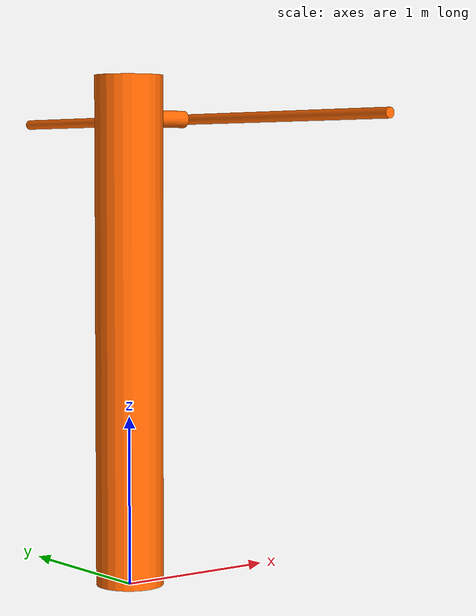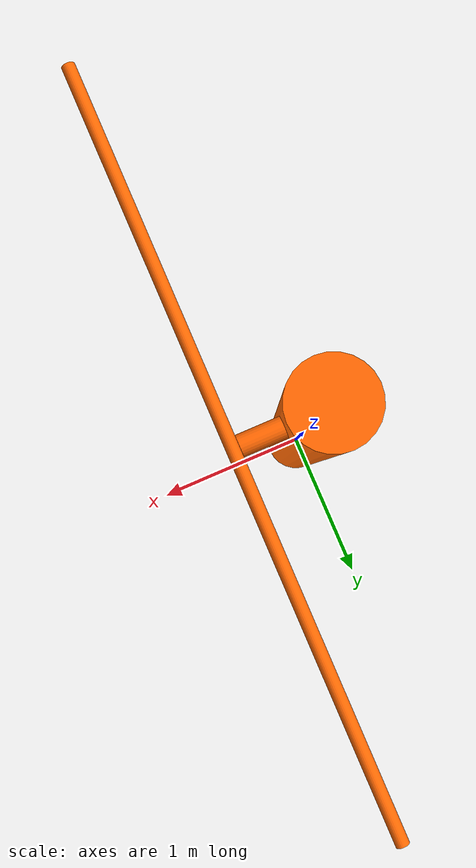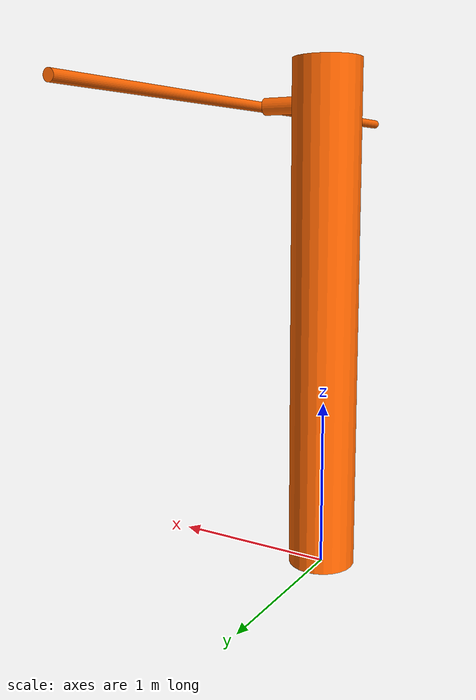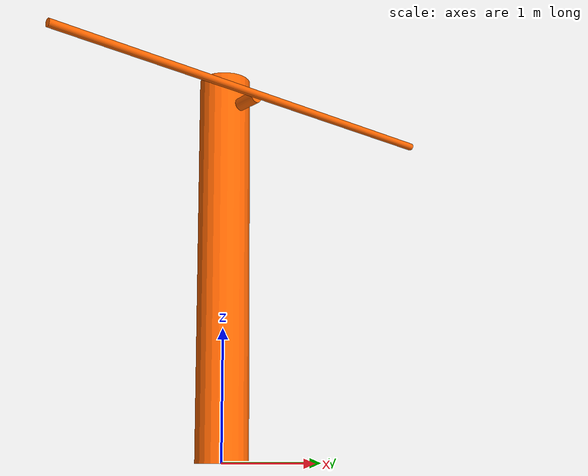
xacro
<robot name="mbot">
    <link name="base_link">
        <visual>
            <origin xyz="0 0 1.5" rpy="0 0 0"/>
            <geometry>
                <cylinder length="3.0" radius="0.2"/>
            </geometry>
            <material name="blue">
                <color rgba="1 0.4 0 1"/>
            </material>
        </visual>
        <collision>
            <origin xyz="0 0 1.5" rpy="0 0 0"/>
            <geometry>
                <cylinder length="3.0" radius="0.2"/>
            </geometry>
        </collision>
        <inertial>
            <origin xyz="0 0 1.5"/>
            <mass value="10"/>
            <inertia ixx="7.6" ixy="0.0" ixz="0.0" iyy="7.6" iyz="0.0" izz="0.2"/>
        </inertial>
    </link>

    <joint name="link1_joint" type="fixed">
        <origin xyz="0.3 0 2.75" rpy="0 0 0"/>
        <parent link="base_link"/>
        <child link="link1"/>
        <axis xyz="1 0 0"/>
    </joint>
    <link name="link1">
        <visual>
            <origin xyz="0 0 0" rpy="1.570795 0 1.570795"/>
            <geometry>
                <cylinder length="0.2" radius="0.05"/>
            </geometry>
            <material name="yellow">
                <color rgba="1 0.4 0 1"/>
            </material>
        </visual>
        <collision>
            <origin xyz="0 0 0" rpy="1.570795 0 1.570795"/>
            <geometry>
                <cylinder length="0.2" radius="0.05"/>
            </geometry>
        </collision>
        <inertial>
            <origin xyz="0 0 0"/>
            <mass value="0.1"/>
            <inertia ixx="0.000125" ixy="0.0" ixz="0.0" iyy="0.0003958" iyz="0.0" izz="0.0003958"/>
        </inertial>
    </link>

    <joint name="link2_joint" type="continuous">
        <origin xyz="0.13 0 0" rpy="0 0 0"/>
        <parent link="link1"/>
        <child link="link2"/>
        <axis xyz="1 0 0"/>
    </joint>
    <link name="link2">
        <visual>
            <origin xyz="0 0 0" rpy="1.570795 1.570795 0"/>
            <geometry>
                <cylinder length="3.5" radius="0.03"/>
            </geometry>
            <material name="yellow">
                <color rgba="1 0.4 0 1"/>
            </material>
        </visual>
        <collision>
            <origin xyz="0 0 0" rpy="1.570795 1.570795 0"/>
            <geometry>
                <cylinder length="3.5" radius="0.03"/>
            </geometry>
        </collision>
        <inertial>
            <origin xyz="0 0 0"/>
            <mass value="0.1"/>
            <inertia ixx="0.1023" ixy="0.0" ixz="0.0" iyy="0.000045" iyz="0.0" izz="0.1023"/>
        </inertial>
    </link>

    <transmission name="link2_trans">
        <type>transmission_interface/SimpleTransmission</type>
        <actuator name="link2_motor">
            <mechanicalReduction>1</mechanicalReduction>
        </actuator>
        <joint name="link2_joint">
            <hardwareInterface>hardware_interface/EffortJointInterface</hardwareInterface>
        </joint>
    </transmission>

    <gazebo>
        <plugin name="gazebo_ros_control" filename="libgazebo_ros_control.so">
            <robotNamespace>/</robotNamespace>
        </plugin>
    </gazebo>
</robot>
